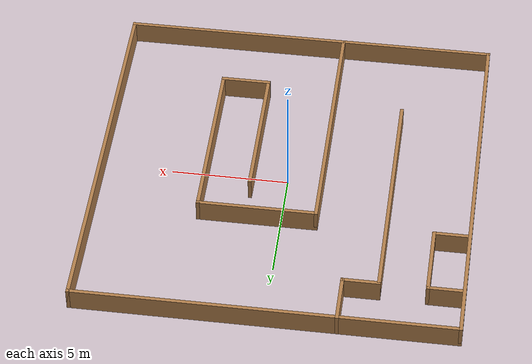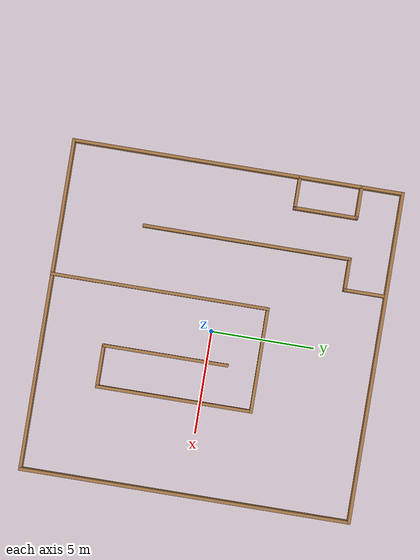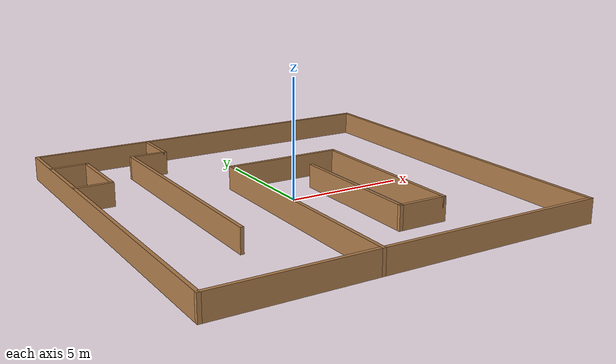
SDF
<?xml version='1.0'?>
<sdf version='1.7'>
  <model name='maze1'>
    <pose>0 0 0 0 -0 0</pose>
    <link name='Wall_11'>
      <collision name='Wall_11_Collision'>
        <geometry>
          <box>
            <size>1.65 0.15 1</size>
          </box>
        </geometry>
        <pose>0 0 0.5 0 -0 0</pose>
      </collision>
      <visual name='Wall_11_Visual'>
        <pose>0 0 0.5 0 -0 0</pose>
        <geometry>
          <box>
            <size>1.65 0.15 1</size>
          </box>
        </geometry>
        <material>
          <script>
            <uri>file://media/materials/scripts/gazebo.material</uri>
            <name>Gazebo/Wood</name>
          </script>
          <ambient>1 1 1 1</ambient>
        </material>
        <meta>
          <layer>0</layer>
        </meta>
      </visual>
      <pose>-7.25 6 0 0 -0 0</pose>
    </link>
    <link name='Wall_12'>
      <collision name='Wall_12_Collision'>
        <geometry>
          <box>
            <size>3.15 0.15 1</size>
          </box>
        </geometry>
        <pose>0 0 0.5 0 -0 0</pose>
      </collision>
      <visual name='Wall_12_Visual'>
        <pose>0 0 0.5 0 -0 0</pose>
        <geometry>
          <box>
            <size>3.15 0.15 1</size>
          </box>
        </geometry>
        <material>
          <script>
            <uri>file://media/materials/scripts/gazebo.material</uri>
            <name>Gazebo/Wood</name>
          </script>
          <ambient>1 1 1 1</ambient>
        </material>
        <meta>
          <layer>0</layer>
        </meta>
      </visual>
      <pose>-6.5 4.5 0 0 -0 -1.5708</pose>
    </link>
    <link name='Wall_13'>
      <collision name='Wall_13_Collision'>
        <geometry>
          <box>
            <size>1.65 0.15 1</size>
          </box>
        </geometry>
        <pose>0 0 0.5 0 -0 0</pose>
      </collision>
      <visual name='Wall_13_Visual'>
        <pose>0 0 0.5 0 -0 0</pose>
        <geometry>
          <box>
            <size>1.65 0.15 1</size>
          </box>
        </geometry>
        <material>
          <script>
            <uri>file://media/materials/scripts/gazebo.material</uri>
            <name>Gazebo/Wood</name>
          </script>
          <ambient>1 1 1 1</ambient>
        </material>
        <meta>
          <layer>0</layer>
        </meta>
      </visual>
      <pose>-7.25 3 0 0 -0 3.14159</pose>
    </link>
    <link name='Wall_15'>
      <collision name='Wall_15_Collision'>
        <geometry>
          <box>
            <size>10.15 0.15 1</size>
          </box>
        </geometry>
        <pose>0 0 0.5 0 -0 0</pose>
      </collision>
      <visual name='Wall_15_Visual'>
        <pose>0 0 0.5 0 -0 0</pose>
        <geometry>
          <box>
            <size>10.15 0.15 1</size>
          </box>
        </geometry>
        <material>
          <script>
            <uri>file://media/materials/scripts/gazebo.material</uri>
            <name>Gazebo/Wood</name>
          </script>
          <ambient>1 1 1 1</ambient>
        </material>
        <meta>
          <layer>0</layer>
        </meta>
      </visual>
      <pose>-4.5 1 0 0 -0 -1.5708</pose>
    </link>
    <link name='Wall_2'>
      <collision name='Wall_2_Collision'>
        <geometry>
          <box>
            <size>16.15 0.15 1</size>
          </box>
        </geometry>
        <pose>0 0 0.5 0 -0 0</pose>
      </collision>
      <visual name='Wall_2_Visual'>
        <pose>0 0 0.5 0 -0 0</pose>
        <geometry>
          <box>
            <size>16.15 0.15 1</size>
          </box>
        </geometry>
        <material>
          <script>
            <uri>file://media/materials/scripts/gazebo.material</uri>
            <name>Gazebo/Wood</name>
          </script>
          <ambient>1 1 1 1</ambient>
        </material>
        <meta>
          <layer>0</layer>
        </meta>
      </visual>
      <pose>0 8 0 0 -0 0</pose>
    </link>
    <link name='Wall_26'>
      <collision name='Wall_26_Collision'>
        <geometry>
          <box>
            <size>10.65 0.15 1</size>
          </box>
        </geometry>
        <pose>0 0 0.5 0 -0 0</pose>
      </collision>
      <visual name='Wall_26_Visual'>
        <pose>0 0 0.5 0 -0 0</pose>
        <geometry>
          <box>
            <size>10.65 0.15 1</size>
          </box>
        </geometry>
        <material>
          <script>
            <uri>file://media/materials/scripts/gazebo.material</uri>
            <name>Gazebo/Wood</name>
          </script>
          <ambient>1 1 1 1</ambient>
        </material>
        <meta>
          <layer>0</layer>
        </meta>
      </visual>
      <pose>-1.5 -2.75 0 0 -0 1.5708</pose>
    </link>
    <link name='Wall_27'>
      <collision name='Wall_27_Collision'>
        <geometry>
          <box>
            <size>5.15 0.15 1</size>
          </box>
        </geometry>
        <pose>0 0 0.5 0 -0 0</pose>
      </collision>
      <visual name='Wall_27_Visual'>
        <pose>0 0 0.5 0 -0 0</pose>
        <geometry>
          <box>
            <size>5.15 0.15 1</size>
          </box>
        </geometry>
        <material>
          <script>
            <uri>file://media/materials/scripts/gazebo.material</uri>
            <name>Gazebo/Wood</name>
          </script>
          <ambient>1 1 1 1</ambient>
        </material>
        <meta>
          <layer>0</layer>
        </meta>
      </visual>
      <pose>1 2.5 0 0 -0 0</pose>
    </link>
    <link name='Wall_28'>
      <collision name='Wall_28_Collision'>
        <geometry>
          <box>
            <size>7.65 0.15 1</size>
          </box>
        </geometry>
        <pose>0 0 0.5 0 -0 0</pose>
      </collision>
      <visual name='Wall_28_Visual'>
        <pose>0 0 0.5 0 -0 0</pose>
        <geometry>
          <box>
            <size>7.65 0.15 1</size>
          </box>
        </geometry>
        <material>
          <script>
            <uri>file://media/materials/scripts/gazebo.material</uri>
            <name>Gazebo/Wood</name>
          </script>
          <ambient>1 1 1 1</ambient>
        </material>
        <meta>
          <layer>0</layer>
        </meta>
      </visual>
      <pose>3.5 -1.25 0 0 -0 -1.5708</pose>
    </link>
    <link name='Wall_29'>
      <collision name='Wall_29_Collision'>
        <geometry>
          <box>
            <size>2.15 0.15 1</size>
          </box>
        </geometry>
        <pose>0 0 0.5 0 -0 0</pose>
      </collision>
      <visual name='Wall_29_Visual'>
        <pose>0 0 0.5 0 -0 0</pose>
        <geometry>
          <box>
            <size>2.15 0.15 1</size>
          </box>
        </geometry>
        <material>
          <script>
            <uri>file://media/materials/scripts/gazebo.material</uri>
            <name>Gazebo/Wood</name>
          </script>
          <ambient>1 1 1 1</ambient>
        </material>
        <meta>
          <layer>0</layer>
        </meta>
      </visual>
      <pose>2.5 -5 0 0 -0 3.14159</pose>
    </link>
    <link name='Wall_3'>
      <collision name='Wall_3_Collision'>
        <geometry>
          <box>
            <size>16.15 0.15 1</size>
          </box>
        </geometry>
        <pose>0 0 0.5 0 -0 0</pose>
      </collision>
      <visual name='Wall_3_Visual'>
        <pose>0 0 0.5 0 -0 0</pose>
        <geometry>
          <box>
            <size>16.15 0.15 1</size>
          </box>
        </geometry>
        <material>
          <script>
            <uri>file://media/materials/scripts/gazebo.material</uri>
            <name>Gazebo/Wood</name>
          </script>
          <ambient>1 1 1 1</ambient>
        </material>
        <meta>
          <layer>0</layer>
        </meta>
      </visual>
      <pose>8 0 0 0 -0 -1.5708</pose>
    </link>
    <link name='Wall_30'>
      <collision name='Wall_30_Collision'>
        <geometry>
          <box>
            <size>6.15 0.15 1</size>
          </box>
        </geometry>
        <pose>0 0 0.5 0 -0 0</pose>
      </collision>
      <visual name='Wall_30_Visual'>
        <pose>0 0 0.5 0 -0 0</pose>
        <geometry>
          <box>
            <size>6.15 0.15 1</size>
          </box>
        </geometry>
        <material>
          <script>
            <uri>file://media/materials/scripts/gazebo.material</uri>
            <name>Gazebo/Wood</name>
          </script>
          <ambient>1 1 1 1</ambient>
        </material>
        <meta>
          <layer>0</layer>
        </meta>
      </visual>
      <pose>1.5 -2 0 0 -0 1.5708</pose>
    </link>
    <link name='Wall_4'>
      <collision name='Wall_4_Collision'>
        <geometry>
          <box>
            <size>16.15 0.15 1</size>
          </box>
        </geometry>
        <pose>0 0 0.5 0 -0 0</pose>
      </collision>
      <visual name='Wall_4_Visual'>
        <pose>0 0 0.5 0 -0 0</pose>
        <geometry>
          <box>
            <size>16.15 0.15 1</size>
          </box>
        </geometry>
        <material>
          <script>
            <uri>file://media/materials/scripts/gazebo.material</uri>
            <name>Gazebo/Wood</name>
          </script>
          <ambient>1 1 1 1</ambient>
        </material>
        <meta>
          <layer>0</layer>
        </meta>
      </visual>
      <pose>0 -8 0 0 -0 3.14159</pose>
    </link>
    <link name='Wall_5'>
      <collision name='Wall_5_Collision'>
        <geometry>
          <box>
            <size>16.15 0.15 1</size>
          </box>
        </geometry>
        <pose>0 0 0.5 0 -0 0</pose>
      </collision>
      <visual name='Wall_5_Visual'>
        <pose>0 0 0.5 0 -0 0</pose>
        <geometry>
          <box>
            <size>16.15 0.15 1</size>
          </box>
        </geometry>
        <material>
          <script>
            <uri>file://media/materials/scripts/gazebo.material</uri>
            <name>Gazebo/Wood</name>
          </script>
          <ambient>1 1 1 1</ambient>
        </material>
        <meta>
          <layer>0</layer>
        </meta>
      </visual>
      <pose>-8 0 0 0 -0 1.5708</pose>
    </link>
    <link name='Wall_7'>
      <collision name='Wall_7_Collision'>
        <geometry>
          <box>
            <size>2.15 0.15 1</size>
          </box>
        </geometry>
        <pose>0 0 0.5 0 -0 0</pose>
      </collision>
      <visual name='Wall_7_Visual'>
        <pose>0 0 0.5 0 -0 0</pose>
        <geometry>
          <box>
            <size>2.15 0.15 1</size>
          </box>
        </geometry>
        <material>
          <script>
            <uri>file://media/materials/scripts/gazebo.material</uri>
            <name>Gazebo/Wood</name>
          </script>
          <ambient>1 1 1 1</ambient>
        </material>
        <meta>
          <layer>0</layer>
        </meta>
      </visual>
      <pose>-3 7 0 0 -0 -1.5708</pose>
    </link>
    <link name='Wall_8'>
      <collision name='Wall_8_Collision'>
        <geometry>
          <box>
            <size>1.65 0.15 1</size>
          </box>
        </geometry>
        <pose>0 0 0.5 0 -0 0</pose>
      </collision>
      <visual name='Wall_8_Visual'>
        <pose>0 0 0.5 0 -0 0</pose>
        <geometry>
          <box>
            <size>1.65 0.15 1</size>
          </box>
        </geometry>
        <material>
          <script>
            <uri>file://media/materials/scripts/gazebo.material</uri>
            <name>Gazebo/Wood</name>
          </script>
          <ambient>1 1 1 1</ambient>
        </material>
        <meta>
          <layer>0</layer>
        </meta>
      </visual>
      <pose>-3.75 6 0 0 -0 3.14159</pose>
    </link>
    <static>1</static>
  </model>
</sdf>
